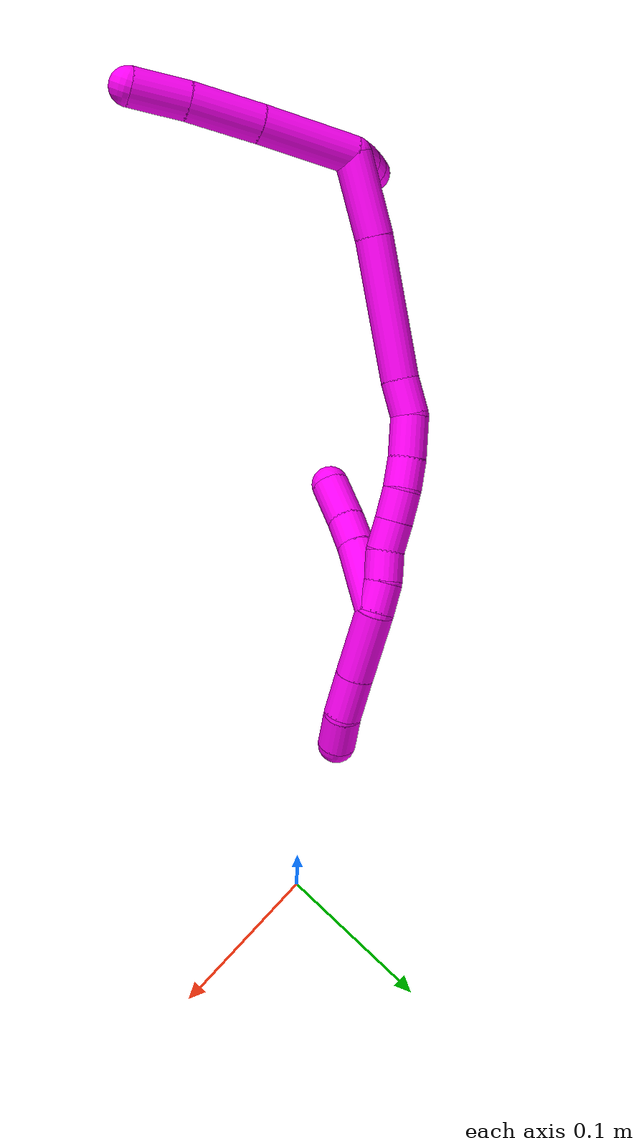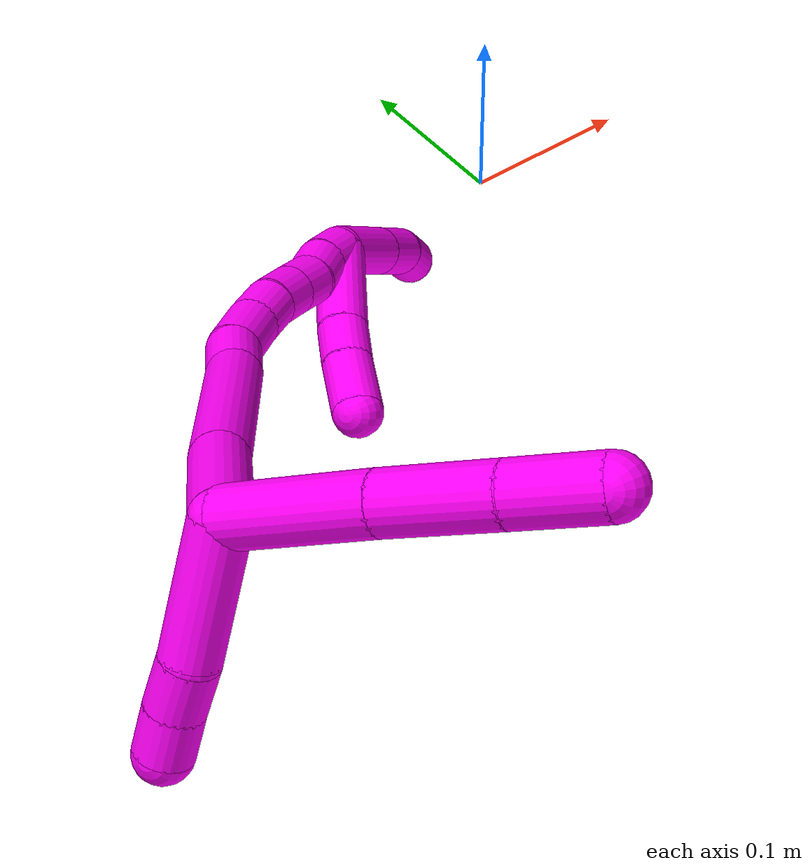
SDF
<sdf version="1.7">
 <world name="default">
  <model name="10">
   <static>0</static>
   <link name="10">
    <collision name="collision-cylinder-e_1_2_8">
     <pose>0.001329 -0.032352 0.000236 1.56349 0.041043 0.040744</pose>
     <geometry><cylinder><radius>0.0125</radius><length>0.06476</length></cylinder></geometry>
     <surface>
      <friction><ode><mu>1.16</mu><mu2>1.16</mu2><slip1>0</slip1><slip2>0</slip2></ode></friction>
      <contact><ode><kp>1e+06</kp><kd>1</kd><max_vel>0</max_vel><min_depth>0.001</min_depth></ode></contact>
     </surface>
    </collision>
    <visual name="visual-cylinder-e_1_2_8">
     <pose>0.001329 -0.032352 0.000236 1.56349 0.041043 0.040744</pose>
     <geometry><cylinder><radius>0.0125</radius><length>0.06476</length></cylinder></geometry>
     <material><ambient>1 0 0.964706 1</ambient></material>
    </visual>
    <collision name="collision-cylinder-e_2_8_9">
     <pose>0.003053 -0.088638 0.000159 1.58391 0.01653 0.016748</pose>
     <geometry><cylinder><radius>0.0125</radius><length>0.047879</length></cylinder></geometry>
     <surface>
      <friction><ode><mu>1.16</mu><mu2>1.16</mu2><slip1>0</slip1><slip2>0</slip2></ode></friction>
      <contact><ode><kp>1e+06</kp><kd>1</kd><max_vel>0</max_vel><min_depth>0.001</min_depth></ode></contact>
     </surface>
    </collision>
    <visual name="visual-cylinder-e_2_8_9">
     <pose>0.003053 -0.088638 0.000159 1.58391 0.01653 0.016748</pose>
     <geometry><cylinder><radius>0.0125</radius><length>0.047879</length></cylinder></geometry>
     <material><ambient>1 0 0.964706 1</ambient></material>
    </visual>
    <collision name="collision-cylinder-e_3_9_6">
     <pose>0.003654 -0.131204 -0.001482 1.64189 0.010988 0.011799</pose>
     <geometry><cylinder><radius>0.0125</radius><length>0.037361</length></cylinder></geometry>
     <surface>
      <friction><ode><mu>1.16</mu><mu2>1.16</mu2><slip1>0</slip1><slip2>0</slip2></ode></friction>
      <contact><ode><kp>1e+06</kp><kd>1</kd><max_vel>0</max_vel><min_depth>0.001</min_depth></ode></contact>
     </surface>
    </collision>
    <visual name="visual-cylinder-e_3_9_6">
     <pose>0.003654 -0.131204 -0.001482 1.64189 0.010988 0.011799</pose>
     <geometry><cylinder><radius>0.0125</radius><length>0.037361</length></cylinder></geometry>
     <material><ambient>1 0 0.964706 1</ambient></material>
    </visual>
    <collision name="collision-cylinder-e_1_2_10">
     <pose>-0.026196 0.01124 -0.001411 -1.69571 -1.16262 1.28021</pose>
     <geometry><cylinder><radius>0.0125</radius><length>0.057081</length></cylinder></geometry>
     <surface>
      <friction><ode><mu>1.16</mu><mu2>1.16</mu2><slip1>0</slip1><slip2>0</slip2></ode></friction>
      <contact><ode><kp>1e+06</kp><kd>1</kd><max_vel>0</max_vel><min_depth>0.001</min_depth></ode></contact>
     </surface>
    </collision>
    <visual name="visual-cylinder-e_1_2_10">
     <pose>-0.026196 0.01124 -0.001411 -1.69571 -1.16262 1.28021</pose>
     <geometry><cylinder><radius>0.0125</radius><length>0.057081</length></cylinder></geometry>
     <material><ambient>1 0 0.964706 1</ambient></material>
    </visual>
    <collision name="collision-cylinder-e_2_10_11">
     <pose>-0.06173 0.028203 -0.004581 -1.8689 -1.00078 1.27421</pose>
     <geometry><cylinder><radius>0.0125</radius><length>0.022185</length></cylinder></geometry>
     <surface>
      <friction><ode><mu>1.16</mu><mu2>1.16</mu2><slip1>0</slip1><slip2>0</slip2></ode></friction>
      <contact><ode><kp>1e+06</kp><kd>1</kd><max_vel>0</max_vel><min_depth>0.001</min_depth></ode></contact>
     </surface>
    </collision>
    <visual name="visual-cylinder-e_2_10_11">
     <pose>-0.06173 0.028203 -0.004581 -1.8689 -1.00078 1.27421</pose>
     <geometry><cylinder><radius>0.0125</radius><length>0.022185</length></cylinder></geometry>
     <material><ambient>1 0 0.964706 1</ambient></material>
    </visual>
    <collision name="collision-cylinder-e_3_11_5">
     <pose>-0.080161 0.038681 -0.007814 -1.87138 -1.06975 1.35429</pose>
     <geometry><cylinder><radius>0.0125</radius><length>0.020735</length></cylinder></geometry>
     <surface>
      <friction><ode><mu>1.16</mu><mu2>1.16</mu2><slip1>0</slip1><slip2>0</slip2></ode></friction>
      <contact><ode><kp>1e+06</kp><kd>1</kd><max_vel>0</max_vel><min_depth>0.001</min_depth></ode></contact>
     </surface>
    </collision>
    <visual name="visual-cylinder-e_3_11_5">
     <pose>-0.080161 0.038681 -0.007814 -1.87138 -1.06975 1.35429</pose>
     <geometry><cylinder><radius>0.0125</radius><length>0.020735</length></cylinder></geometry>
     <material><ambient>1 0 0.964706 1</ambient></material>
    </visual>
    <collision name="collision-cylinder-e_1_2_12">
     <pose>0.007913 0.013047 -0.022272 -2.61167 0.29746 -1.00907</pose>
     <geometry><cylinder><radius>0.0125</radius><length>0.053997</length></cylinder></geometry>
     <surface>
      <friction><ode><mu>1.16</mu><mu2>1.16</mu2><slip1>0</slip1><slip2>0</slip2></ode></friction>
      <contact><ode><kp>1e+06</kp><kd>1</kd><max_vel>0</max_vel><min_depth>0.001</min_depth></ode></contact>
     </surface>
    </collision>
    <visual name="visual-cylinder-e_1_2_12">
     <pose>0.007913 0.013047 -0.022272 -2.61167 0.29746 -1.00907</pose>
     <geometry><cylinder><radius>0.0125</radius><length>0.053997</length></cylinder></geometry>
     <material><ambient>1 0 0.964706 1</ambient></material>
    </visual>
    <collision name="collision-cylinder-e_2_12_13">
     <pose>0.02947 0.045303 -0.08441 -2.69259 0.299074 -1.16645</pose>
     <geometry><cylinder><radius>0.0125</radius><length>0.092613</length></cylinder></geometry>
     <surface>
      <friction><ode><mu>1.16</mu><mu2>1.16</mu2><slip1>0</slip1><slip2>0</slip2></ode></friction>
      <contact><ode><kp>1e+06</kp><kd>1</kd><max_vel>0</max_vel><min_depth>0.001</min_depth></ode></contact>
     </surface>
    </collision>
    <visual name="visual-cylinder-e_2_12_13">
     <pose>0.02947 0.045303 -0.08441 -2.69259 0.299074 -1.16645</pose>
     <geometry><cylinder><radius>0.0125</radius><length>0.092613</length></cylinder></geometry>
     <material><ambient>1 0 0.964706 1</ambient></material>
    </visual>
    <collision name="collision-cylinder-e_3_13_14">
     <pose>0.04808 0.069927 -0.133933 -2.63047 0.421648 -1.37253</pose>
     <geometry><cylinder><radius>0.0125</radius><length>0.024274</length></cylinder></geometry>
     <surface>
      <friction><ode><mu>1.16</mu><mu2>1.16</mu2><slip1>0</slip1><slip2>0</slip2></ode></friction>
      <contact><ode><kp>1e+06</kp><kd>1</kd><max_vel>0</max_vel><min_depth>0.001</min_depth></ode></contact>
     </surface>
    </collision>
    <visual name="visual-cylinder-e_3_13_14">
     <pose>0.04808 0.069927 -0.133933 -2.63047 0.421648 -1.37253</pose>
     <geometry><cylinder><radius>0.0125</radius><length>0.024274</length></cylinder></geometry>
     <material><ambient>1 0 0.964706 1</ambient></material>
    </visual>
    <collision name="collision-cylinder-e_4_14_15">
     <pose>0.057972 0.077427 -0.156334 -2.97962 0.364345 -2.31157</pose>
     <geometry><cylinder><radius>0.0125</radius><length>0.027636</length></cylinder></geometry>
     <surface>
      <friction><ode><mu>1.16</mu><mu2>1.16</mu2><slip1>0</slip1><slip2>0</slip2></ode></friction>
      <contact><ode><kp>1e+06</kp><kd>1</kd><max_vel>0</max_vel><min_depth>0.001</min_depth></ode></contact>
     </surface>
    </collision>
    <visual name="visual-cylinder-e_4_14_15">
     <pose>0.057972 0.077427 -0.156334 -2.97962 0.364345 -2.31157</pose>
     <geometry><cylinder><radius>0.0125</radius><length>0.027636</length></cylinder></geometry>
     <material><ambient>1 0 0.964706 1</ambient></material>
    </visual>
    <collision name="collision-cylinder-e_5_15_16">
     <pose>0.06685 0.079863 -0.178648 -3.10455 0.391516 -2.95529</pose>
     <geometry><cylinder><radius>0.0125</radius><length>0.020725</length></cylinder></geometry>
     <surface>
      <friction><ode><mu>1.16</mu><mu2>1.16</mu2><slip1>0</slip1><slip2>0</slip2></ode></friction>
      <contact><ode><kp>1e+06</kp><kd>1</kd><max_vel>0</max_vel><min_depth>0.001</min_depth></ode></contact>
     </surface>
    </collision>
    <visual name="visual-cylinder-e_5_15_16">
     <pose>0.06685 0.079863 -0.178648 -3.10455 0.391516 -2.95529</pose>
     <geometry><cylinder><radius>0.0125</radius><length>0.020725</length></cylinder></geometry>
     <material><ambient>1 0 0.964706 1</ambient></material>
    </visual>
    <collision name="collision-cylinder-e_6_16_17">
     <pose>0.073093 0.080238 -0.198241 -3.13962 0.22458 -3.12405</pose>
     <geometry><cylinder><radius>0.0125</radius><length>0.020561</length></cylinder></geometry>
     <surface>
      <friction><ode><mu>1.16</mu><mu2>1.16</mu2><slip1>0</slip1><slip2>0</slip2></ode></friction>
      <contact><ode><kp>1e+06</kp><kd>1</kd><max_vel>0</max_vel><min_depth>0.001</min_depth></ode></contact>
     </surface>
    </collision>
    <visual name="visual-cylinder-e_6_16_17">
     <pose>0.073093 0.080238 -0.198241 -3.13962 0.22458 -3.12405</pose>
     <geometry><cylinder><radius>0.0125</radius><length>0.020561</length></cylinder></geometry>
     <material><ambient>1 0 0.964706 1</ambient></material>
    </visual>
    <collision name="collision-cylinder-e_7_17_18">
     <pose>0.077505 0.079996 -0.218052 3.11483 0.213487 2.89312</pose>
     <geometry><cylinder><radius>0.0125</radius><length>0.020038</length></cylinder></geometry>
     <surface>
      <friction><ode><mu>1.16</mu><mu2>1.16</mu2><slip1>0</slip1><slip2>0</slip2></ode></friction>
      <contact><ode><kp>1e+06</kp><kd>1</kd><max_vel>0</max_vel><min_depth>0.001</min_depth></ode></contact>
     </surface>
    </collision>
    <visual name="visual-cylinder-e_7_17_18">
     <pose>0.077505 0.079996 -0.218052 3.11483 0.213487 2.89312</pose>
     <geometry><cylinder><radius>0.0125</radius><length>0.020038</length></cylinder></geometry>
     <material><ambient>1 0 0.964706 1</ambient></material>
    </visual>
    <collision name="collision-cylinder-e_8_18_19">
     <pose>0.083438 0.081113 -0.236989 -2.99196 0.390609 -2.41721</pose>
     <geometry><cylinder><radius>0.0125</radius><length>0.020013</length></cylinder></geometry>
     <surface>
      <friction><ode><mu>1.16</mu><mu2>1.16</mu2><slip1>0</slip1><slip2>0</slip2></ode></friction>
      <contact><ode><kp>1e+06</kp><kd>1</kd><max_vel>0</max_vel><min_depth>0.001</min_depth></ode></contact>
     </surface>
    </collision>
    <visual name="visual-cylinder-e_8_18_19">
     <pose>0.083438 0.081113 -0.236989 -2.99196 0.390609 -2.41721</pose>
     <geometry><cylinder><radius>0.0125</radius><length>0.020013</length></cylinder></geometry>
     <material><ambient>1 0 0.964706 1</ambient></material>
    </visual>
    <collision name="collision-cylinder-e_9_19_1">
     <pose>0.089706 0.082276 -0.255903 3.11942 0.246495 2.96305</pose>
     <geometry><cylinder><radius>0.0125</radius><length>0.020144</length></cylinder></geometry>
     <surface>
      <friction><ode><mu>1.16</mu><mu2>1.16</mu2><slip1>0</slip1><slip2>0</slip2></ode></friction>
      <contact><ode><kp>1e+06</kp><kd>1</kd><max_vel>0</max_vel><min_depth>0.001</min_depth></ode></contact>
     </surface>
    </collision>
    <visual name="visual-cylinder-e_9_19_1">
     <pose>0.089706 0.082276 -0.255903 3.11942 0.246495 2.96305</pose>
     <geometry><cylinder><radius>0.0125</radius><length>0.020144</length></cylinder></geometry>
     <material><ambient>1 0 0.964706 1</ambient></material>
    </visual>
    <collision name="collision-cylinder-e_1_1_20">
     <pose>0.091063 0.083317 -0.288702 -3.08706 -0.047666 1.43649</pose>
     <geometry><cylinder><radius>0.0125</radius><length>0.046187</length></cylinder></geometry>
     <surface>
      <friction><ode><mu>1.16</mu><mu2>1.16</mu2><slip1>0</slip1><slip2>0</slip2></ode></friction>
      <contact><ode><kp>1e+06</kp><kd>1</kd><max_vel>0</max_vel><min_depth>0.001</min_depth></ode></contact>
     </surface>
    </collision>
    <visual name="visual-cylinder-e_1_1_20">
     <pose>0.091063 0.083317 -0.288702 -3.08706 -0.047666 1.43649</pose>
     <geometry><cylinder><radius>0.0125</radius><length>0.046187</length></cylinder></geometry>
     <material><ambient>1 0 0.964706 1</ambient></material>
    </visual>
    <collision name="collision-cylinder-e_2_20_21">
     <pose>0.089259 0.085526 -0.326301 -3.07634 -0.048118 1.27072</pose>
     <geometry><cylinder><radius>0.0125</radius><length>0.029228</length></cylinder></geometry>
     <surface>
      <friction><ode><mu>1.16</mu><mu2>1.16</mu2><slip1>0</slip1><slip2>0</slip2></ode></friction>
      <contact><ode><kp>1e+06</kp><kd>1</kd><max_vel>0</max_vel><min_depth>0.001</min_depth></ode></contact>
     </surface>
    </collision>
    <visual name="visual-cylinder-e_2_20_21">
     <pose>0.089259 0.085526 -0.326301 -3.07634 -0.048118 1.27072</pose>
     <geometry><cylinder><radius>0.0125</radius><length>0.029228</length></cylinder></geometry>
     <material><ambient>1 0 0.964706 1</ambient></material>
    </visual>
    <collision name="collision-cylinder-e_3_21_4">
     <pose>0.085755 0.089156 -0.352532 -2.9159 -0.22996 1.58968</pose>
     <geometry><cylinder><radius>0.0125</radius><length>0.024585</length></cylinder></geometry>
     <surface>
      <friction><ode><mu>1.16</mu><mu2>1.16</mu2><slip1>0</slip1><slip2>0</slip2></ode></friction>
      <contact><ode><kp>1e+06</kp><kd>1</kd><max_vel>0</max_vel><min_depth>0.001</min_depth></ode></contact>
     </surface>
    </collision>
    <visual name="visual-cylinder-e_3_21_4">
     <pose>0.085755 0.089156 -0.352532 -2.9159 -0.22996 1.58968</pose>
     <geometry><cylinder><radius>0.0125</radius><length>0.024585</length></cylinder></geometry>
     <material><ambient>1 0 0.964706 1</ambient></material>
    </visual>
    <collision name="collision-cylinder-e_1_1_22">
     <pose>0.073143 0.075857 -0.251105 0.402651 -0.876701 -0.190761</pose>
     <geometry><cylinder><radius>0.0125</radius><length>0.04949</length></cylinder></geometry>
     <surface>
      <friction><ode><mu>1.16</mu><mu2>1.16</mu2><slip1>0</slip1><slip2>0</slip2></ode></friction>
      <contact><ode><kp>1e+06</kp><kd>1</kd><max_vel>0</max_vel><min_depth>0.001</min_depth></ode></contact>
     </surface>
    </collision>
    <visual name="visual-cylinder-e_1_1_22">
     <pose>0.073143 0.075857 -0.251105 0.402651 -0.876701 -0.190761</pose>
     <geometry><cylinder><radius>0.0125</radius><length>0.04949</length></cylinder></geometry>
     <material><ambient>1 0 0.964706 1</ambient></material>
    </visual>
    <collision name="collision-cylinder-e_2_22_23">
     <pose>0.045908 0.066427 -0.230922 0.521155 -0.902872 -0.257123</pose>
     <geometry><cylinder><radius>0.0125</radius><length>0.020928</length></cylinder></geometry>
     <surface>
      <friction><ode><mu>1.16</mu><mu2>1.16</mu2><slip1>0</slip1><slip2>0</slip2></ode></friction>
      <contact><ode><kp>1e+06</kp><kd>1</kd><max_vel>0</max_vel><min_depth>0.001</min_depth></ode></contact>
     </surface>
    </collision>
    <visual name="visual-cylinder-e_2_22_23">
     <pose>0.045908 0.066427 -0.230922 0.521155 -0.902872 -0.257123</pose>
     <geometry><cylinder><radius>0.0125</radius><length>0.020928</length></cylinder></geometry>
     <material><ambient>1 0 0.964706 1</ambient></material>
    </visual>
    <collision name="collision-cylinder-e_3_23_3">
     <pose>0.026549 0.057626 -0.217331 0.610294 -0.853227 -0.284406</pose>
     <geometry><cylinder><radius>0.0125</radius><length>0.029582</length></cylinder></geometry>
     <surface>
      <friction><ode><mu>1.16</mu><mu2>1.16</mu2><slip1>0</slip1><slip2>0</slip2></ode></friction>
      <contact><ode><kp>1e+06</kp><kd>1</kd><max_vel>0</max_vel><min_depth>0.001</min_depth></ode></contact>
     </surface>
    </collision>
    <visual name="visual-cylinder-e_3_23_3">
     <pose>0.026549 0.057626 -0.217331 0.610294 -0.853227 -0.284406</pose>
     <geometry><cylinder><radius>0.0125</radius><length>0.029582</length></cylinder></geometry>
     <material><ambient>1 0 0.964706 1</ambient></material>
    </visual>
    <collision name="collision-sphere-3">
     <pose>0.015406 0.052052 -0.209361 0 -0 0</pose>
     <geometry><sphere><radius>0.0125</radius></sphere></geometry>
     <surface>
      <friction><ode><mu>1.16</mu><mu2>1.16</mu2><slip1>0</slip1><slip2>0</slip2></ode></friction>
      <contact><ode><kp>1e+06</kp><kd>1</kd><max_vel>0</max_vel><min_depth>0.001</min_depth></ode></contact>
     </surface>
    </collision>
    <visual name="visual-sphere-3">
     <pose>0.015406 0.052052 -0.209361 0 -0 0</pose>
     <geometry><sphere><radius>0.0125</radius></sphere></geometry>
     <material><ambient>1 0 0.964706 1</ambient></material>
    </visual>
    <collision name="collision-sphere-23">
     <pose>0.037693 0.0632 -0.225301 0 -0 0</pose>
     <geometry><sphere><radius>0.0125</radius></sphere></geometry>
     <surface>
      <friction><ode><mu>1.16</mu><mu2>1.16</mu2><slip1>0</slip1><slip2>0</slip2></ode></friction>
      <contact><ode><kp>1e+06</kp><kd>1</kd><max_vel>0</max_vel><min_depth>0.001</min_depth></ode></contact>
     </surface>
    </collision>
    <visual name="visual-sphere-23">
     <pose>0.037693 0.0632 -0.225301 0 -0 0</pose>
     <geometry><sphere><radius>0.0125</radius></sphere></geometry>
     <material><ambient>1 0 0.964706 1</ambient></material>
    </visual>
    <collision name="collision-sphere-22">
     <pose>0.054124 0.069654 -0.236542 0 -0 0</pose>
     <geometry><sphere><radius>0.0125</radius></sphere></geometry>
     <surface>
      <friction><ode><mu>1.16</mu><mu2>1.16</mu2><slip1>0</slip1><slip2>0</slip2></ode></friction>
      <contact><ode><kp>1e+06</kp><kd>1</kd><max_vel>0</max_vel><min_depth>0.001</min_depth></ode></contact>
     </surface>
    </collision>
    <visual name="visual-sphere-22">
     <pose>0.054124 0.069654 -0.236542 0 -0 0</pose>
     <geometry><sphere><radius>0.0125</radius></sphere></geometry>
     <material><ambient>1 0 0.964706 1</ambient></material>
    </visual>
    <collision name="collision-sphere-4">
     <pose>0.082953 0.091835 -0.364197 0 -0 0</pose>
     <geometry><sphere><radius>0.0125</radius></sphere></geometry>
     <surface>
      <friction><ode><mu>1.16</mu><mu2>1.16</mu2><slip1>0</slip1><slip2>0</slip2></ode></friction>
      <contact><ode><kp>1e+06</kp><kd>1</kd><max_vel>0</max_vel><min_depth>0.001</min_depth></ode></contact>
     </surface>
    </collision>
    <visual name="visual-sphere-4">
     <pose>0.082953 0.091835 -0.364197 0 -0 0</pose>
     <geometry><sphere><radius>0.0125</radius></sphere></geometry>
     <material><ambient>1 0 0.964706 1</ambient></material>
    </visual>
    <collision name="collision-sphere-21">
     <pose>0.088557 0.086478 -0.340867 0 -0 0</pose>
     <geometry><sphere><radius>0.0125</radius></sphere></geometry>
     <surface>
      <friction><ode><mu>1.16</mu><mu2>1.16</mu2><slip1>0</slip1><slip2>0</slip2></ode></friction>
      <contact><ode><kp>1e+06</kp><kd>1</kd><max_vel>0</max_vel><min_depth>0.001</min_depth></ode></contact>
     </surface>
    </collision>
    <visual name="visual-sphere-21">
     <pose>0.088557 0.086478 -0.340867 0 -0 0</pose>
     <geometry><sphere><radius>0.0125</radius></sphere></geometry>
     <material><ambient>1 0 0.964706 1</ambient></material>
    </visual>
    <collision name="collision-sphere-20">
     <pose>0.089962 0.084574 -0.311735 0 -0 0</pose>
     <geometry><sphere><radius>0.0125</radius></sphere></geometry>
     <surface>
      <friction><ode><mu>1.16</mu><mu2>1.16</mu2><slip1>0</slip1><slip2>0</slip2></ode></friction>
      <contact><ode><kp>1e+06</kp><kd>1</kd><max_vel>0</max_vel><min_depth>0.001</min_depth></ode></contact>
     </surface>
    </collision>
    <visual name="visual-sphere-20">
     <pose>0.089962 0.084574 -0.311735 0 -0 0</pose>
     <geometry><sphere><radius>0.0125</radius></sphere></geometry>
     <material><ambient>1 0 0.964706 1</ambient></material>
    </visual>
    <collision name="collision-sphere-11">
     <pose>-0.071069 0.033925 -0.006339 0 -0 0</pose>
     <geometry><sphere><radius>0.0125</radius></sphere></geometry>
     <surface>
      <friction><ode><mu>1.16</mu><mu2>1.16</mu2><slip1>0</slip1><slip2>0</slip2></ode></friction>
      <contact><ode><kp>1e+06</kp><kd>1</kd><max_vel>0</max_vel><min_depth>0.001</min_depth></ode></contact>
     </surface>
    </collision>
    <visual name="visual-sphere-11">
     <pose>-0.071069 0.033925 -0.006339 0 -0 0</pose>
     <geometry><sphere><radius>0.0125</radius></sphere></geometry>
     <material><ambient>1 0 0.964706 1</ambient></material>
    </visual>
    <collision name="collision-sphere-10">
     <pose>-0.052391 0.022481 -0.002823 0 -0 0</pose>
     <geometry><sphere><radius>0.0125</radius></sphere></geometry>
     <surface>
      <friction><ode><mu>1.16</mu><mu2>1.16</mu2><slip1>0</slip1><slip2>0</slip2></ode></friction>
      <contact><ode><kp>1e+06</kp><kd>1</kd><max_vel>0</max_vel><min_depth>0.001</min_depth></ode></contact>
     </surface>
    </collision>
    <visual name="visual-sphere-10">
     <pose>-0.052391 0.022481 -0.002823 0 -0 0</pose>
     <geometry><sphere><radius>0.0125</radius></sphere></geometry>
     <material><ambient>1 0 0.964706 1</ambient></material>
    </visual>
    <collision name="collision-sphere-6">
     <pose>0.003859 -0.149836 -0.002809 0 -0 0</pose>
     <geometry><sphere><radius>0.0125</radius></sphere></geometry>
     <surface>
      <friction><ode><mu>1.16</mu><mu2>1.16</mu2><slip1>0</slip1><slip2>0</slip2></ode></friction>
      <contact><ode><kp>1e+06</kp><kd>1</kd><max_vel>0</max_vel><min_depth>0.001</min_depth></ode></contact>
     </surface>
    </collision>
    <visual name="visual-sphere-6">
     <pose>0.003859 -0.149836 -0.002809 0 -0 0</pose>
     <geometry><sphere><radius>0.0125</radius></sphere></geometry>
     <material><ambient>1 0 0.964706 1</ambient></material>
    </visual>
    <collision name="collision-sphere-9">
     <pose>0.003449 -0.112572 -0.000155 0 -0 0</pose>
     <geometry><sphere><radius>0.0125</radius></sphere></geometry>
     <surface>
      <friction><ode><mu>1.16</mu><mu2>1.16</mu2><slip1>0</slip1><slip2>0</slip2></ode></friction>
      <contact><ode><kp>1e+06</kp><kd>1</kd><max_vel>0</max_vel><min_depth>0.001</min_depth></ode></contact>
     </surface>
    </collision>
    <visual name="visual-sphere-9">
     <pose>0.003449 -0.112572 -0.000155 0 -0 0</pose>
     <geometry><sphere><radius>0.0125</radius></sphere></geometry>
     <material><ambient>1 0 0.964706 1</ambient></material>
    </visual>
    <collision name="collision-sphere-2">
     <geometry><sphere><radius>0.0125</radius></sphere></geometry>
     <surface>
      <friction><ode><mu>1.16</mu><mu2>1.16</mu2><slip1>0</slip1><slip2>0</slip2></ode></friction>
      <contact><ode><kp>1e+06</kp><kd>1</kd><max_vel>0</max_vel><min_depth>0.001</min_depth></ode></contact>
     </surface>
    </collision>
    <visual name="visual-sphere-2">
     <geometry><sphere><radius>0.0125</radius></sphere></geometry>
     <material><ambient>1 0 0.964706 1</ambient></material>
    </visual>
    <collision name="collision-sphere-19">
     <pose>0.087248 0.082493 -0.246138 0 -0 0</pose>
     <geometry><sphere><radius>0.0125</radius></sphere></geometry>
     <surface>
      <friction><ode><mu>1.16</mu><mu2>1.16</mu2><slip1>0</slip1><slip2>0</slip2></ode></friction>
      <contact><ode><kp>1e+06</kp><kd>1</kd><max_vel>0</max_vel><min_depth>0.001</min_depth></ode></contact>
     </surface>
    </collision>
    <visual name="visual-sphere-19">
     <pose>0.087248 0.082493 -0.246138 0 -0 0</pose>
     <geometry><sphere><radius>0.0125</radius></sphere></geometry>
     <material><ambient>1 0 0.964706 1</ambient></material>
    </visual>
    <collision name="collision-sphere-8">
     <pose>0.002657 -0.064704 0.000473 0 -0 0</pose>
     <geometry><sphere><radius>0.0125</radius></sphere></geometry>
     <surface>
      <friction><ode><mu>1.16</mu><mu2>1.16</mu2><slip1>0</slip1><slip2>0</slip2></ode></friction>
      <contact><ode><kp>1e+06</kp><kd>1</kd><max_vel>0</max_vel><min_depth>0.001</min_depth></ode></contact>
     </surface>
    </collision>
    <visual name="visual-sphere-8">
     <pose>0.002657 -0.064704 0.000473 0 -0 0</pose>
     <geometry><sphere><radius>0.0125</radius></sphere></geometry>
     <material><ambient>1 0 0.964706 1</ambient></material>
    </visual>
    <collision name="collision-sphere-5">
     <pose>-0.089254 0.043438 -0.009288 0 -0 0</pose>
     <geometry><sphere><radius>0.0125</radius></sphere></geometry>
     <surface>
      <friction><ode><mu>1.16</mu><mu2>1.16</mu2><slip1>0</slip1><slip2>0</slip2></ode></friction>
      <contact><ode><kp>1e+06</kp><kd>1</kd><max_vel>0</max_vel><min_depth>0.001</min_depth></ode></contact>
     </surface>
    </collision>
    <visual name="visual-sphere-5">
     <pose>-0.089254 0.043438 -0.009288 0 -0 0</pose>
     <geometry><sphere><radius>0.0125</radius></sphere></geometry>
     <material><ambient>1 0 0.964706 1</ambient></material>
    </visual>
    <collision name="collision-sphere-12">
     <pose>0.015826 0.026095 -0.044545 0 -0 0</pose>
     <geometry><sphere><radius>0.0125</radius></sphere></geometry>
     <surface>
      <friction><ode><mu>1.16</mu><mu2>1.16</mu2><slip1>0</slip1><slip2>0</slip2></ode></friction>
      <contact><ode><kp>1e+06</kp><kd>1</kd><max_vel>0</max_vel><min_depth>0.001</min_depth></ode></contact>
     </surface>
    </collision>
    <visual name="visual-sphere-12">
     <pose>0.015826 0.026095 -0.044545 0 -0 0</pose>
     <geometry><sphere><radius>0.0125</radius></sphere></geometry>
     <material><ambient>1 0 0.964706 1</ambient></material>
    </visual>
    <collision name="collision-sphere-13">
     <pose>0.043113 0.064511 -0.124275 0 -0 0</pose>
     <geometry><sphere><radius>0.0125</radius></sphere></geometry>
     <surface>
      <friction><ode><mu>1.16</mu><mu2>1.16</mu2><slip1>0</slip1><slip2>0</slip2></ode></friction>
      <contact><ode><kp>1e+06</kp><kd>1</kd><max_vel>0</max_vel><min_depth>0.001</min_depth></ode></contact>
     </surface>
    </collision>
    <visual name="visual-sphere-13">
     <pose>0.043113 0.064511 -0.124275 0 -0 0</pose>
     <geometry><sphere><radius>0.0125</radius></sphere></geometry>
     <material><ambient>1 0 0.964706 1</ambient></material>
    </visual>
    <collision name="collision-sphere-14">
     <pose>0.053048 0.075344 -0.143592 0 -0 0</pose>
     <geometry><sphere><radius>0.0125</radius></sphere></geometry>
     <surface>
      <friction><ode><mu>1.16</mu><mu2>1.16</mu2><slip1>0</slip1><slip2>0</slip2></ode></friction>
      <contact><ode><kp>1e+06</kp><kd>1</kd><max_vel>0</max_vel><min_depth>0.001</min_depth></ode></contact>
     </surface>
    </collision>
    <visual name="visual-sphere-14">
     <pose>0.053048 0.075344 -0.143592 0 -0 0</pose>
     <geometry><sphere><radius>0.0125</radius></sphere></geometry>
     <material><ambient>1 0 0.964706 1</ambient></material>
    </visual>
    <collision name="collision-sphere-15">
     <pose>0.062895 0.079509 -0.169076 0 -0 0</pose>
     <geometry><sphere><radius>0.0125</radius></sphere></geometry>
     <surface>
      <friction><ode><mu>1.16</mu><mu2>1.16</mu2><slip1>0</slip1><slip2>0</slip2></ode></friction>
      <contact><ode><kp>1e+06</kp><kd>1</kd><max_vel>0</max_vel><min_depth>0.001</min_depth></ode></contact>
     </surface>
    </collision>
    <visual name="visual-sphere-15">
     <pose>0.062895 0.079509 -0.169076 0 -0 0</pose>
     <geometry><sphere><radius>0.0125</radius></sphere></geometry>
     <material><ambient>1 0 0.964706 1</ambient></material>
    </visual>
    <collision name="collision-sphere-16">
     <pose>0.070804 0.080218 -0.188219 0 -0 0</pose>
     <geometry><sphere><radius>0.0125</radius></sphere></geometry>
     <surface>
      <friction><ode><mu>1.16</mu><mu2>1.16</mu2><slip1>0</slip1><slip2>0</slip2></ode></friction>
      <contact><ode><kp>1e+06</kp><kd>1</kd><max_vel>0</max_vel><min_depth>0.001</min_depth></ode></contact>
     </surface>
    </collision>
    <visual name="visual-sphere-16">
     <pose>0.070804 0.080218 -0.188219 0 -0 0</pose>
     <geometry><sphere><radius>0.0125</radius></sphere></geometry>
     <material><ambient>1 0 0.964706 1</ambient></material>
    </visual>
    <collision name="collision-sphere-17">
     <pose>0.075383 0.080258 -0.208264 0 -0 0</pose>
     <geometry><sphere><radius>0.0125</radius></sphere></geometry>
     <surface>
      <friction><ode><mu>1.16</mu><mu2>1.16</mu2><slip1>0</slip1><slip2>0</slip2></ode></friction>
      <contact><ode><kp>1e+06</kp><kd>1</kd><max_vel>0</max_vel><min_depth>0.001</min_depth></ode></contact>
     </surface>
    </collision>
    <visual name="visual-sphere-17">
     <pose>0.075383 0.080258 -0.208264 0 -0 0</pose>
     <geometry><sphere><radius>0.0125</radius></sphere></geometry>
     <material><ambient>1 0 0.964706 1</ambient></material>
    </visual>
    <collision name="collision-sphere-18">
     <pose>0.079628 0.079734 -0.22784 0 -0 0</pose>
     <geometry><sphere><radius>0.0125</radius></sphere></geometry>
     <surface>
      <friction><ode><mu>1.16</mu><mu2>1.16</mu2><slip1>0</slip1><slip2>0</slip2></ode></friction>
      <contact><ode><kp>1e+06</kp><kd>1</kd><max_vel>0</max_vel><min_depth>0.001</min_depth></ode></contact>
     </surface>
    </collision>
    <visual name="visual-sphere-18">
     <pose>0.079628 0.079734 -0.22784 0 -0 0</pose>
     <geometry><sphere><radius>0.0125</radius></sphere></geometry>
     <material><ambient>1 0 0.964706 1</ambient></material>
    </visual>
    <collision name="collision-sphere-1">
     <pose>0.092163 0.082059 -0.265668 0 -0 0</pose>
     <geometry><sphere><radius>0.0125</radius></sphere></geometry>
     <surface>
      <friction><ode><mu>1.16</mu><mu2>1.16</mu2><slip1>0</slip1><slip2>0</slip2></ode></friction>
      <contact><ode><kp>1e+06</kp><kd>1</kd><max_vel>0</max_vel><min_depth>0.001</min_depth></ode></contact>
     </surface>
    </collision>
    <visual name="visual-sphere-1">
     <pose>0.092163 0.082059 -0.265668 0 -0 0</pose>
     <geometry><sphere><radius>0.0125</radius></sphere></geometry>
     <material><ambient>1 0 0.964706 1</ambient></material>
    </visual>
    <inertial>
     <pose>0.031967 0.030857 -0.125655 0 -0 0</pose>
     <mass>0.75</mass>
     <inertia>
      <ixx>2.1e-05</ixx>
      <ixy>0</ixy>
      <ixz>0</ixz>
      <iyy>-4.1e-05</iyy>
      <iyz>0</iyz>
      <izz>-2.3e-05</izz>
     </inertia>
    </inertial>
   </link>
   <pose>-0.33678 -0.268279 0.196653 -0.573251 -0.824017 1.09128</pose>
  </model>
 </world>
</sdf>
